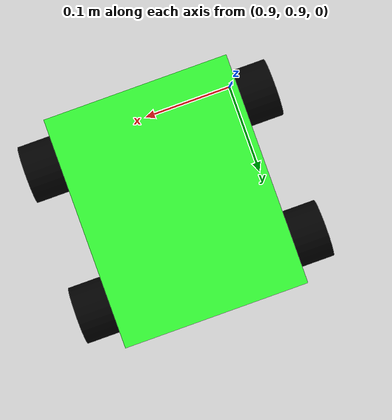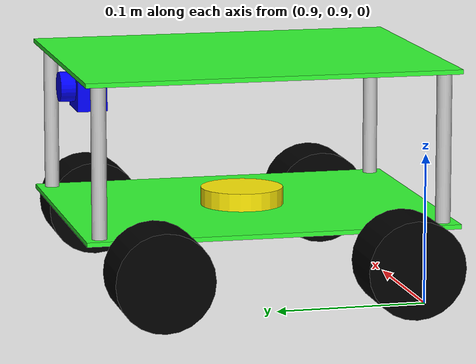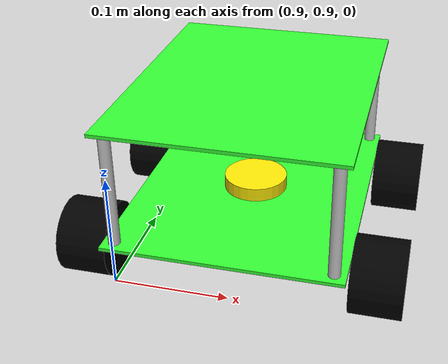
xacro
<?xml version="1.0"?>
<robot xmlns:xacro="http://www.ros.org/wiki/xacro" name="mon_robot_mecanum">

    <xacro:include filename="ros2_control.xacro"/>
    <xacro:include filename="urdf/mon_robot.urdf.xacro"/>
</robot>

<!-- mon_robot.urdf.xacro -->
<robot name="mon_robot_mecanum" xmlns:xacro="http://ros.org/wiki/xacro">

    <!-- DIMENSIONS -->
        <!-- BASE -->
        <xacro:property name="base_length" value="0.25" />
        <xacro:property name="base_width" value="0.2" />
        <xacro:property name="base_thickness" value="0.003"/>
        <xacro:property name="base_mass" value="0.4"/>

        <!-- ROUES -->
        <xacro:property name="mecanum_length" value="0.043" />
        <xacro:property name="mecanum_radius" value="0.0325" />
        <xacro:property name="mecanum_mass" value="0.1"/>

        <!-- TIGES -->
        <xacro:property name="tiges_length" value="0.1" />
        <xacro:property name="tiges_radius" value="0.005" />
        <xacro:property name="tiges_mass" value="0.01"/>

        <!-- LiDAR -->
        <xacro:property name="LiDAR_length" value="0.015" />
        <xacro:property name="LiDAR_radius" value="0.028" />
        <xacro:property name="LiDAR_mass" value="0.1"/>

        <!-- CAMERA -->
        <xacro:property name="camera_length" value="0.03" />
        <xacro:property name="camera_width" value="0.02" />
        <xacro:property name="camera_thickness" value="0.03"/>
        <xacro:property name="camera_obj_length" value="0.01" /> <!-- Objectif -->
        <xacro:property name="camera_obj_radius" value="0.01" />
        <xacro:property name="camera_mass" value="0.05"/>

        <!-- AUTRES -->
        <xacro:property name="h_AxeMoteur_Base" value="0.0165"/>

    <!-- Include  -->
    <xacro:include filename="outils.xacro"/>
    <xacro:include filename="materials.xacro"/>
    <xacro:include filename="base_robot.xacro"/>
    <xacro:include filename="roue_mecanum.xacro"/>
    <xacro:include filename="tiges.xacro"/>

    <!-- Lien 'world' qui est le parent de tous les autres liens -->
    <link name="world_link"></link>

    <!-- Joint fixe pour connecter la base au monde -->
    <joint name="base_joint" type="fixed">
        <origin xyz="1 1 0" rpy="0 0 0"/>
        <parent link="world_link"/>
        <child link="base_link"/>
    </joint>

    <!-- Base du robot -->
    <xacro:base_robot link="base_link"> <!-- link -->
        <origin xyz="0 0 ${mecanum_radius+h_AxeMoteur_Base+base_thickness/2}" rpy="0 0 0"/>
    </xacro:base_robot>

    <!-- LiDAR -->
    <xacro:include filename="LiDAR.xacro"/>

    <!-- Roues mécanum -->
        <!-- Avant Gauche -->
        <xacro:roue_mecanum name="roue_AvG"> <!-- link et joint -->
            <origin xyz="-0.1225 0.0825 ${mecanum_radius}" rpy="0 ${pi/2} 0"/> <!-- approximatif -->
        </xacro:roue_mecanum>

        <!-- Avant Droite -->
        <xacro:roue_mecanum name="roue_AvD"> <!-- link et joint -->
            <origin xyz="0.1225 0.0825 ${mecanum_radius}" rpy="0 ${pi/2} 0"/> <!-- approximatif -->
        </xacro:roue_mecanum>

        <!-- Arrière Gauche -->
        <xacro:roue_mecanum name="roue_ArG"> <!-- link et joint -->
            <origin xyz="-0.1225 -0.0825 ${mecanum_radius}" rpy="0 ${pi/2} 0"/> <!-- approximatif -->
        </xacro:roue_mecanum>

        <!-- Arrière Droit -->
        <xacro:roue_mecanum name="roue_ArD"> <!-- link et joint -->
            <origin xyz="0.1225 -0.0825 ${mecanum_radius}" rpy="0 ${pi/2} 0"/> <!-- approximatif -->
        </xacro:roue_mecanum>

    <!-- Tiges pour plateau 2 -->
        <!-- Avant Gauche -->
        <xacro:tiges name="tige_AvG"> <!-- link et joint -->
            <origin xyz="0.09 0.115 ${mecanum_radius+h_AxeMoteur_Base+base_thickness+tiges_length/2}" rpy="0 0 0"/> <!-- approximatif -->
        </xacro:tiges>

        <!-- Avant Droit -->
        <xacro:tiges name="tige_AvD"> <!-- link et joint -->
            <origin xyz="-0.09 0.115 ${mecanum_radius+h_AxeMoteur_Base+base_thickness+tiges_length/2}" rpy="0 0 0"/> <!-- approximatif -->
        </xacro:tiges>

        <!-- Arrière Gauche -->
        <xacro:tiges name="tige_ArG"> <!-- link et joint -->
            <origin xyz="0.09 -0.115 ${mecanum_radius+h_AxeMoteur_Base+base_thickness+tiges_length/2}" rpy="0 0 0"/> <!-- approximatif -->
        </xacro:tiges>

        <!-- Arrière Droit -->
        <xacro:tiges name="tige_ArD"> <!-- link et joint -->
            <origin xyz="-0.09 -0.115 ${mecanum_radius+h_AxeMoteur_Base+base_thickness+tiges_length/2}" rpy="0 0 0"/> <!-- approximatif -->
        </xacro:tiges>

    <!-- Plateau 2 -->
    <xacro:base_robot link="plateau2_link"> <!-- link -->
        <origin xyz="0 0 ${mecanum_radius+h_AxeMoteur_Base+base_thickness*1.5+tiges_length}" rpy="0 0 0"/>
    </xacro:base_robot>

    <joint name="plateau2_joint" type="fixed">
        <origin xyz="0 0 0" rpy="0 0 0"/>
        <parent link="base_link"/>
        <child link="plateau2_link"/>
    </joint>

    <!-- Caméra -->
    <xacro:include filename="camera.xacro"/>

</robot>

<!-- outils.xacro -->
<robot xmlns:xacro="https://www.ros.org/wiki/xacro">
    <xacro:macro name="inertial_sphere" params="mass radius *origin">
        <inertial>
            <xacro:insert_block name="origin"/>
            <mass value="${mass}" />
            <inertia ixx="${(2/5) * mass * (radius*radius)}" ixy="0.0" ixz="0.0"
                    iyy="${(2/5) * mass * (radius*radius)}" iyz="0.0"
                    izz="${(2/5) * mass * (radius*radius)}" />
        </inertial>
    </xacro:macro>

    <xacro:macro name="inertial_box" params="mass x y z *origin">
        <inertial>
            <xacro:insert_block name="origin"/>
            <mass value="${mass}" />
            <inertia ixx="${(1/12) * mass * (y*y+z*z)}" ixy="0.0" ixz="0.0"
                    iyy="${(1/12) * mass * (x*x+z*z)}" iyz="0.0"
                    izz="${(1/12) * mass * (x*x+y*y)}" />
        </inertial>
    </xacro:macro>

    <xacro:macro name="inertial_cylinder" params="mass length radius *origin">
        <inertial>
            <xacro:insert_block name="origin"/>
            <mass value="${mass}" />
            <inertia ixx="${(1/12) * mass * (3*radius*radius + length*length)}" ixy="0.0" ixz="0.0"
                    iyy="${(1/12) * mass * (3*radius*radius + length*length)}" iyz="0.0"
                    izz="${(1/2) * mass * (radius*radius)}" />
        </inertial>
    </xacro:macro>
</robot>

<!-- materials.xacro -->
<robot xmlns:xacro="https://www.ros.org/wiki/xacro">
    <material name="green">
        <color rgba="0.2 1 0.2 1"/>
	</material>

  <material name="black">
    <color rgba="0 0 0 1"/>
  </material>

  <material name="silver">
    <color rgba="0.8 0.8 0.8 1"/>
  </material>

  <material name="yellow">
    <color rgba="1 0.92 0.016 1"/>
  </material>

  <material name="blue">
      <color rgba="0 0 1 1"/>
  </material>

  </robot>

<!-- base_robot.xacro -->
<robot xmlns:xacro="https://www.ros.org/wiki/xacro">

    <xacro:macro name="base_robot" params="link *origin">
        <link name="${link}">
            <visual>
                <geometry>
                    <box size="${base_width} ${base_length} ${base_thickness}"/>
                </geometry>
                <xacro:insert_block name="origin"/> <!-- This will insert the origin block -->
                <material name="green"/>   <!--penser à bien mettre le xacro materials avant-->
            </visual>

            <collision>
                <geometry>
                    <box size="${base_width} ${base_length} ${base_thickness}"/>
                <xacro:insert_block name="origin"/>
                </geometry>
            </collision>

            <xacro:inertial_box mass="${base_mass}" x="${base_width}" y="${base_length}" z="${base_thickness}">
                <xacro:insert_block name="origin"/>
            </xacro:inertial_box>
        </link>

        <gazebo reference="${link}">
            <material>Gazebo/Green</material>
        </gazebo>
    </xacro:macro>

</robot>

<!-- Example of calling the macro -->

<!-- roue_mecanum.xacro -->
<robot xmlns:xacro="http://www.ros.org/wiki/xacro">
    <xacro:macro name="roue_mecanum" params="name *origin">
        <!-- Joint to connect the mecanum wheel to a robot (you will need to adjust this) -->
        <joint name="${name}_joint" type="continuous">
            <parent link="base_link"/>
            <child link="${name}_link"/>
            <xacro:insert_block name="origin"/> <!-- This will insert the origin block -->
            <axis xyz="0 1 0"/> <!-- Axis of rotation for the wheel -->
        </joint>

        <!-- Mecanum Wheel Link -->
        <link name="${name}_link">
            <visual>
                <origin xyz="0 0 0" rpy="0 0 0"/>
                <geometry>
                    <cylinder length="${mecanum_length}" radius="${mecanum_radius}"/> <!-- dimensions -->
                </geometry>
                <material name="black"/>
            </visual>

            <collision>
                <origin xyz="0 0 0" rpy="0 0 0"/>
                <geometry>
                    <cylinder length="${mecanum_length}" radius="${mecanum_radius}"/> <!-- dimensions -->
                </geometry>
            </collision>

            <xacro:inertial_cylinder mass="${mecanum_mass}" length="${mecanum_length}" radius="${mecanum_radius}">
                <origin xyz="0 0 0" rpy="0 0 0"/>
            </xacro:inertial_cylinder>

        </link>

        <gazebo reference="${name}_link">
            <material>Gazebo/Black</material>
            <mu1 value="1"/> <!-- Coef de friction statique -->
            <mu2 value="0.8"/> <!-- Coef de friction cinétique -->
        </gazebo>
    </xacro:macro>
</robot>

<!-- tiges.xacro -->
<robot xmlns:xacro="http://www.ros.org/wiki/xacro">
    <xacro:macro name="tiges" params="name *origin">
        <!-- Tiges Joint -->
        <joint name="${name}_joint" type="fixed">
            <parent link="base_link"/>
            <child link="${name}_link"/>
            <xacro:insert_block name="origin"/> <!-- This will insert the origin block -->
        </joint>

        <!-- Tiges Link -->
        <link name="${name}_link">
            <visual>
                <origin xyz="0 0 0" rpy="0 0 0"/>
                <geometry>
                    <cylinder length="${tiges_length}" radius="${tiges_radius}"/> <!-- dimensions -->
                </geometry>
                <material name="silver"/>
            </visual>

            <collision>
                <origin xyz="0 0 0" rpy="0 0 0"/>
                <geometry>
                    <cylinder length="${tiges_length}" radius="${tiges_radius}"/> <!-- dimensions -->
                </geometry>
            </collision>

            <inertial>
                <origin xyz="0 0 0" rpy="0 0 0"/>
                <mass value="0.01"/> <!-- Example mass à modifier-->
                <inertia ixx="0.001" ixy="0" ixz="0" iyy="0.001" iyz="0" izz="0.002"/> <!-- Example inertia tensor values (à calculer) -->
            </inertial>

            <xacro:inertial_cylinder mass="${tiges_mass}" length="${tiges_length}" radius="${tiges_radius}">
                <origin xyz="0 0 0" rpy="0 0 0"/>
            </xacro:inertial_cylinder>
        </link>

        <gazebo reference="${name}_link">
            <material>Gazebo/Silver</material>
        </gazebo>
    </xacro:macro>
</robot>

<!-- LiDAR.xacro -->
<robot xmlns:xacro="http://www.ros.org/wiki/xacro">
        <!-- LiDAR Joint -->
        <joint name="LiDAR_joint" type="fixed">
            <parent link="base_link"/>
            <child link="LiDAR_link"/>
            <origin xyz="0 0 ${mecanum_radius+h_AxeMoteur_Base+LiDAR_length/2}" rpy="0 0 0"/>
        </joint>

        <!-- LiDAR Link -->
        <link name="LiDAR_link">
            <visual>
                <origin xyz="0 0 0" rpy="0 0 0"/>
                <geometry>
                    <cylinder length="${LiDAR_length}" radius="${LiDAR_radius}"/> <!-- dimensions -->
                </geometry>
                <material name="yellow"/>
            </visual>

            <collision>
                <origin xyz="0 0 0" rpy="0 0 0"/>
                <geometry>
                    <cylinder length="${LiDAR_length}" radius="${LiDAR_radius}"/> <!-- dimensions -->
                </geometry>
            </collision>

            <xacro:inertial_cylinder mass="${LiDAR_mass}" length="${LiDAR_length}" radius="${LiDAR_radius}">
                <origin xyz="0.0 0 0" rpy="0 0 0"/>
            </xacro:inertial_cylinder>
        </link>

        <gazebo reference='LiDAR_link'>
            <sensor name="laser" type="ray">
                <pose> 0 0 0 0 0 0 </pose>
                <visualize>true</visualize>
                <update_rate>10</update_rate>
                <ray>
                    <scan>
                        <horizontal>
                            <samples>360</samples>
                            <resolution>1</resolution>
                            <min_angle>-3.14</min_angle>
                            <max_angle>3.14</max_angle>
                        </horizontal>
                    </scan>
                    <range>
                        <min>0.3</min>
                        <max>12</max>
                        <resolution>0.01</resolution>
                    </range>
                </ray>
                <plugin name="laser_controller" filename="libgazebo_ros_ray_sensor.so">
                    <ros>
                        <argument>~/out:=scan</argument> <!-- publishing ont the topic scan -->
                    </ros>
                    <output_type>sensor_msg/LaserScan</output_type>
                </plugin>
            </sensor>
        </gazebo>
</robot>

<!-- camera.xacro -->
<robot xmlns:xacro="https://www.ros.org/wiki/xacro">

    <joint name="camera_joint" type="fixed">
        <origin xyz="0 ${base_length/2-camera_width} ${mecanum_radius+h_AxeMoteur_Base+base_thickness+tiges_length-camera_thickness/2}" rpy="0 0 0"/>
        <parent link="plateau2_link"/>
        <child link="camera_link"/>
    </joint>

    <link name="camera_link">
        <visual>
            <origin xyz="0 0 0" rpy="0 0 0"/>
            <geometry>
                <box size="${camera_length} ${camera_width} ${camera_thickness}" />
            </geometry>
            <material name="blue" />
        </visual>
        <visual>
            <origin xyz="0 ${camera_width/2+camera_obj_length/2} 0" rpy="${pi/2} 0 0"/>
            <geometry>
                <cylinder length="${camera_obj_length}" radius="${camera_obj_radius}" />
            </geometry>
            <material name="blue" />
        </visual>
        <collision>
            <origin xyz="0.0 0 0" rpy="0 0 0"/> <!-- attention j'ai rien modif à partir de la -->
            <geometry>
                <box size="${camera_length} ${camera_width+camera_obj_length} ${camera_thickness}" />
            </geometry>
        </collision>

        <xacro:inertial_box mass="${camera_mass}" x="${camera_length}" y="${camera_width}" z="${camera_thickness}">
            <origin xyz="0.0 0 0" rpy="0 0 0"/>
        </xacro:inertial_box>
    </link>

    <gazebo reference='camera_link'>
        <material>Gazebo/Blue</material>
    </gazebo>

</robot>
